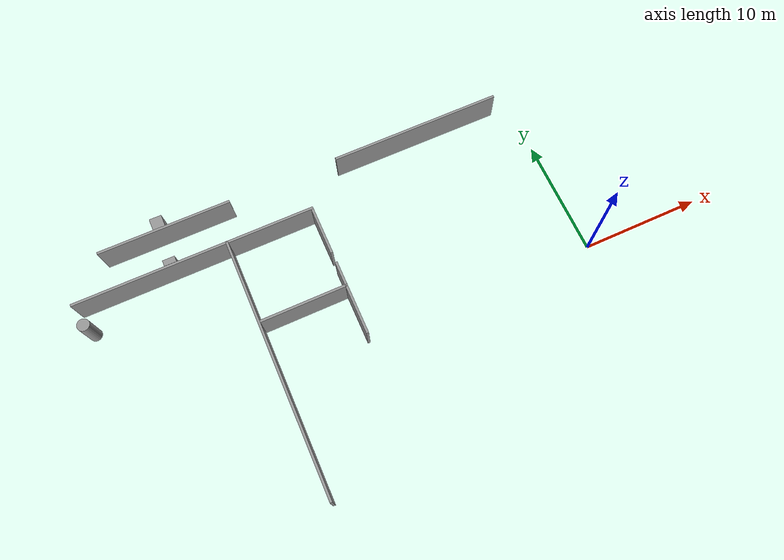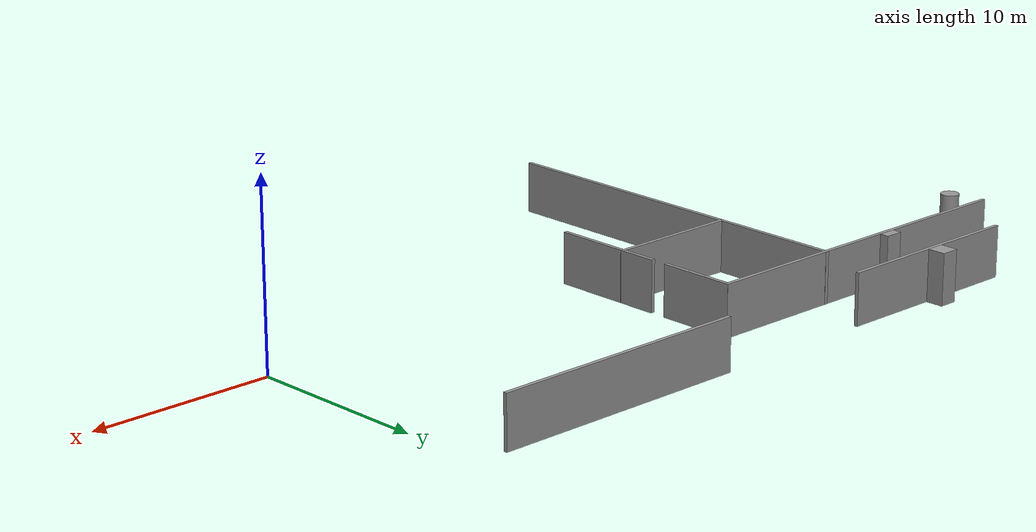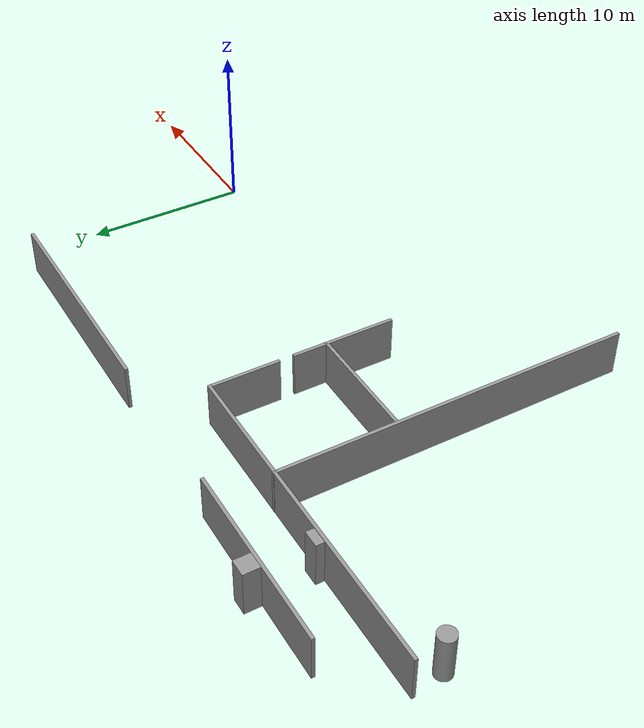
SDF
<sdf version="1.6">
 <world name="default">
  <model name="g1_clone_1_0_clone_0_0_0_clone_clone_0_clone_0">
   <link name="link">
    <pose>6.64359 0.252719 1.4 0 -0 0</pose>
    <inertial>
     <mass>1</mass>
     <inertia><ixx>1</ixx><ixy>0</ixy><ixz>0</ixz><iyy>1</iyy><iyz>0</iyz><izz>1</izz></inertia>
    </inertial>
    <visual name="visual">
     <cast_shadows>0</cast_shadows>
     <geometry><box><size>20 0.2 2.8</size></box></geometry>
     <material>
      <script>
       <uri>model://grey_wall/materials/scripts</uri>
       <uri>model://grey_wall/materials/textures</uri>
       <name>vrc/grey_wall</name>
      </script>
      <ambient>1 1 1 1</ambient>
      <diffuse>1 1 1 1</diffuse>
      <specular>0 0 0 1</specular>
      <emissive>0 0 0 1</emissive>
      <shader type="vertex"><normal_map>__default__</normal_map></shader>
     </material>
    </visual>
    <collision name="collision">
     <geometry><box><size>20 0.2 2.8</size></box></geometry>
     <surface>
      <friction>
       <ode><mu>1</mu><mu2>1</mu2><fdir1>0 0 0</fdir1><slip1>0</slip1><slip2>0</slip2></ode>
       <torsional>
        <coefficient>1</coefficient>
        <patch_radius>0</patch_radius>
        <surface_radius>0</surface_radius>
        <use_patch_radius>1</use_patch_radius>
        <ode><slip>0</slip></ode>
       </torsional>
      </friction>
      <bounce><restitution_coefficient>0</restitution_coefficient><threshold>1e+06</threshold></bounce>
      <contact>
       <collide_without_contact>0</collide_without_contact>
       <collide_without_contact_bitmask>1</collide_without_contact_bitmask>
       <collide_bitmask>1</collide_bitmask>
       <ode>
        <soft_cfm>0</soft_cfm>
        <soft_erp>0.2</soft_erp>
        <kp>1e+13</kp>
        <kd>1</kd>
        <max_vel>0.01</max_vel>
        <min_depth>0</min_depth>
       </ode>
       <bullet>
        <split_impulse>1</split_impulse>
        <split_impulse_penetration_threshold>-0.01</split_impulse_penetration_threshold>
        <soft_cfm>0</soft_cfm>
        <soft_erp>0.2</soft_erp>
        <kp>1e+13</kp>
        <kd>1</kd>
       </bullet>
      </contact>
     </surface>
    </collision>
   </link>
   <static>1</static>
   <pose>-36.0333 10.9946 0 0 -0 0.000774</pose>
  </model>
  <model name="g1_clone_1_0_clone_0_0_0_clone_clone_0_clone_clone_0_0">
   <link name="link">
    <pose>9.44353 0.252325 1.4 0 -0 0</pose>
    <inertial>
     <mass>1</mass>
     <inertia><ixx>1</ixx><ixy>0</ixy><ixz>0</ixz><iyy>1</iyy><iyz>0</iyz><izz>1</izz></inertia>
    </inertial>
    <visual name="visual">
     <cast_shadows>0</cast_shadows>
     <geometry><box><size>14.4 0.2 2.8</size></box></geometry>
     <material>
      <script>
       <uri>model://grey_wall/materials/scripts</uri>
       <uri>model://grey_wall/materials/textures</uri>
       <name>vrc/grey_wall</name>
      </script>
      <ambient>1 1 1 1</ambient>
      <diffuse>1 1 1 1</diffuse>
      <specular>0 0 0 1</specular>
      <emissive>0 0 0 1</emissive>
      <shader type="vertex"><normal_map>__default__</normal_map></shader>
     </material>
    </visual>
    <collision name="collision">
     <geometry><box><size>14.4 0.2 2.8</size></box></geometry>
     <surface>
      <friction>
       <ode><mu>1</mu><mu2>1</mu2><fdir1>0 0 0</fdir1><slip1>0</slip1><slip2>0</slip2></ode>
       <torsional>
        <coefficient>1</coefficient>
        <patch_radius>0</patch_radius>
        <surface_radius>0</surface_radius>
        <use_patch_radius>1</use_patch_radius>
        <ode><slip>0</slip></ode>
       </torsional>
      </friction>
      <bounce><restitution_coefficient>0</restitution_coefficient><threshold>1e+06</threshold></bounce>
      <contact>
       <collide_without_contact>0</collide_without_contact>
       <collide_without_contact_bitmask>1</collide_without_contact_bitmask>
       <collide_bitmask>1</collide_bitmask>
       <ode>
        <soft_cfm>0</soft_cfm>
        <soft_erp>0.2</soft_erp>
        <kp>1e+13</kp>
        <kd>1</kd>
        <max_vel>0.01</max_vel>
        <min_depth>0</min_depth>
       </ode>
       <bullet>
        <split_impulse>1</split_impulse>
        <split_impulse_penetration_threshold>-0.01</split_impulse_penetration_threshold>
        <soft_cfm>0</soft_cfm>
        <soft_erp>0.2</soft_erp>
        <kp>1e+13</kp>
        <kd>1</kd>
       </bullet>
      </contact>
     </surface>
    </collision>
   </link>
   <static>1</static>
   <pose>-18.3147 14.3119 0 0 -0 0.000774</pose>
  </model>
  <model name="grey_wall_0_0_clone_0_clone">
   <link name="link">
    <pose>0 0 1.4 0 -0 0</pose>
    <inertial>
     <mass>1</mass>
     <inertia><ixx>1</ixx><ixy>0</ixy><ixz>0</ixz><iyy>1</iyy><iyz>0</iyz><izz>1</izz></inertia>
    </inertial>
    <visual name="visual">
     <cast_shadows>0</cast_shadows>
     <geometry><box><size>7.4 0.2 2.8</size></box></geometry>
     <material>
      <script>
       <uri>model://grey_wall/materials/scripts</uri>
       <uri>model://grey_wall/materials/textures</uri>
       <name>vrc/grey_wall</name>
      </script>
      <ambient>1 1 1 1</ambient>
      <diffuse>1 1 1 1</diffuse>
      <specular>0 0 0 1</specular>
      <emissive>0 0 0 1</emissive>
      <shader type="vertex"><normal_map>__default__</normal_map></shader>
     </material>
    </visual>
    <collision name="collision">
     <geometry><box><size>7.4 0.2 2.8</size></box></geometry>
     <surface>
      <friction>
       <ode><mu>1</mu><mu2>1</mu2><fdir1>0 0 0</fdir1><slip1>0</slip1><slip2>0</slip2></ode>
       <torsional>
        <coefficient>1</coefficient>
        <patch_radius>0</patch_radius>
        <surface_radius>0</surface_radius>
        <use_patch_radius>1</use_patch_radius>
        <ode><slip>0</slip></ode>
       </torsional>
      </friction>
      <bounce><restitution_coefficient>0</restitution_coefficient><threshold>1e+06</threshold></bounce>
      <contact>
       <collide_without_contact>0</collide_without_contact>
       <collide_without_contact_bitmask>1</collide_without_contact_bitmask>
       <collide_bitmask>1</collide_bitmask>
       <ode>
        <soft_cfm>0</soft_cfm>
        <soft_erp>0.2</soft_erp>
        <kp>1e+13</kp>
        <kd>1</kd>
        <max_vel>0.01</max_vel>
        <min_depth>0</min_depth>
       </ode>
       <bullet>
        <split_impulse>1</split_impulse>
        <split_impulse_penetration_threshold>-0.01</split_impulse_penetration_threshold>
        <soft_cfm>0</soft_cfm>
        <soft_erp>0.2</soft_erp>
        <kp>1e+13</kp>
        <kd>1</kd>
       </bullet>
      </contact>
     </surface>
    </collision>
   </link>
   <static>1</static>
   <pose>-23.1246 4.09947 0 0 -0 0</pose>
  </model>
  <model name="g2_clone_0_0_clone_clone_clone_0">
   <link name="link">
    <pose>0 0 1.4 0 -0 0</pose>
    <inertial>
     <mass>1</mass>
     <inertia><ixx>1</ixx><ixy>0</ixy><ixz>0</ixz><iyy>1</iyy><iyz>0</iyz><izz>1</izz></inertia>
    </inertial>
    <visual name="visual">
     <cast_shadows>0</cast_shadows>
     <geometry><box><size>21.8 0.2 2.8</size></box></geometry>
     <material>
      <script>
       <uri>model://grey_wall/materials/scripts</uri>
       <uri>model://grey_wall/materials/textures</uri>
       <name>vrc/grey_wall</name>
      </script>
      <ambient>1 1 1 1</ambient>
      <diffuse>1 1 1 1</diffuse>
      <specular>0 0 0 1</specular>
      <emissive>0 0 0 1</emissive>
      <shader type="vertex"><normal_map>__default__</normal_map></shader>
     </material>
    </visual>
    <collision name="collision">
     <geometry><box><size>21.8 0.2 2.8</size></box></geometry>
     <surface>
      <friction>
       <ode><mu>1</mu><mu2>1</mu2><fdir1>0 0 0</fdir1><slip1>0</slip1><slip2>0</slip2></ode>
       <torsional>
        <coefficient>1</coefficient>
        <patch_radius>0</patch_radius>
        <surface_radius>0</surface_radius>
        <use_patch_radius>1</use_patch_radius>
        <ode><slip>0</slip></ode>
       </torsional>
      </friction>
      <bounce><restitution_coefficient>0</restitution_coefficient><threshold>1e+06</threshold></bounce>
      <contact>
       <collide_without_contact>0</collide_without_contact>
       <collide_without_contact_bitmask>1</collide_without_contact_bitmask>
       <collide_bitmask>1</collide_bitmask>
       <ode>
        <soft_cfm>0</soft_cfm>
        <soft_erp>0.2</soft_erp>
        <kp>1e+13</kp>
        <kd>1</kd>
        <max_vel>0.01</max_vel>
        <min_depth>0</min_depth>
       </ode>
       <bullet>
        <split_impulse>1</split_impulse>
        <split_impulse_penetration_threshold>-0.01</split_impulse_penetration_threshold>
        <soft_cfm>0</soft_cfm>
        <soft_erp>0.2</soft_erp>
        <kp>1e+13</kp>
        <kd>1</kd>
       </bullet>
      </contact>
     </surface>
    </collision>
   </link>
   <static>1</static>
   <pose>-26.7519 0.468182 0 0 0 -1.57584</pose>
  </model>
  <model name="g3_clone_clone_0_0_0_0_0_clone_0_clone_0_clone_2_clone_0_clone_0_clone_1">
   <link name="link">
    <pose>0.7232 0.251992 1.4 0 -0 0</pose>
    <inertial>
     <mass>1</mass>
     <inertia><ixx>1</ixx><ixy>0</ixy><ixz>0</ixz><iyy>1</iyy><iyz>0</iyz><izz>1</izz></inertia>
    </inertial>
    <visual name="visual">
     <cast_shadows>0</cast_shadows>
     <geometry><box><size>4.3 0.2 2.8</size></box></geometry>
     <material>
      <script>
       <uri>model://grey_wall/materials/scripts</uri>
       <uri>model://grey_wall/materials/textures</uri>
       <name>vrc/grey_wall</name>
      </script>
      <ambient>1 1 1 1</ambient>
      <diffuse>1 1 1 1</diffuse>
      <specular>0 0 0 1</specular>
      <emissive>0 0 0 1</emissive>
      <shader type="vertex"><normal_map>__default__</normal_map></shader>
     </material>
    </visual>
    <collision name="collision">
     <geometry><box><size>4.3 0.2 2.8</size></box></geometry>
     <surface>
      <friction>
       <ode><mu>1</mu><mu2>1</mu2><fdir1>0 0 0</fdir1><slip1>0</slip1><slip2>0</slip2></ode>
       <torsional>
        <coefficient>1</coefficient>
        <patch_radius>0</patch_radius>
        <surface_radius>0</surface_radius>
        <use_patch_radius>1</use_patch_radius>
        <ode><slip>0</slip></ode>
       </torsional>
      </friction>
      <bounce><restitution_coefficient>0</restitution_coefficient><threshold>1e+06</threshold></bounce>
      <contact>
       <collide_without_contact>0</collide_without_contact>
       <collide_without_contact_bitmask>1</collide_without_contact_bitmask>
       <collide_bitmask>1</collide_bitmask>
       <ode>
        <soft_cfm>0</soft_cfm>
        <soft_erp>0.2</soft_erp>
        <kp>1e+13</kp>
        <kd>1</kd>
        <max_vel>0.01</max_vel>
        <min_depth>0</min_depth>
       </ode>
       <bullet>
        <split_impulse>1</split_impulse>
        <split_impulse_penetration_threshold>-0.01</split_impulse_penetration_threshold>
        <soft_cfm>0</soft_cfm>
        <soft_erp>0.2</soft_erp>
        <kp>1e+13</kp>
        <kd>1</kd>
       </bullet>
      </contact>
     </surface>
    </collision>
   </link>
   <static>1</static>
   <pose>-19.7478 9.93284 0 0 0 -1.57728</pose>
  </model>
  <model name="g3_clone_clone_0_clone_0_0_0_0_0_0_clone_clone_clone_0_clone_0_clone_1_0_clone_2">
   <link name="link">
    <pose>0.277892 -0.062462 1.4 0 -0 0</pose>
    <inertial>
     <mass>1</mass>
     <inertia><ixx>1</ixx><ixy>0</ixy><ixz>0</ixz><iyy>1</iyy><iyz>0</iyz><izz>1</izz></inertia>
    </inertial>
    <visual name="visual">
     <cast_shadows>0</cast_shadows>
     <geometry><box><size>2.2 0.2 2.8</size></box></geometry>
     <material>
      <script>
       <uri>model://grey_wall/materials/scripts</uri>
       <uri>model://grey_wall/materials/textures</uri>
       <name>vrc/grey_wall</name>
      </script>
      <ambient>1 1 1 1</ambient>
      <diffuse>1 1 1 1</diffuse>
      <specular>0 0 0 1</specular>
      <emissive>0 0 0 1</emissive>
      <shader type="vertex"><normal_map>__default__</normal_map></shader>
     </material>
    </visual>
    <collision name="collision">
     <geometry><box><size>2.2 0.2 2.8</size></box></geometry>
     <surface>
      <friction>
       <ode><mu>1</mu><mu2>1</mu2><fdir1>0 0 0</fdir1><slip1>0</slip1><slip2>0</slip2></ode>
       <torsional>
        <coefficient>1</coefficient>
        <patch_radius>0</patch_radius>
        <surface_radius>0</surface_radius>
        <use_patch_radius>1</use_patch_radius>
        <ode><slip>0</slip></ode>
       </torsional>
      </friction>
      <bounce><restitution_coefficient>0</restitution_coefficient><threshold>1e+06</threshold></bounce>
      <contact>
       <collide_without_contact>0</collide_without_contact>
       <collide_without_contact_bitmask>1</collide_without_contact_bitmask>
       <collide_bitmask>1</collide_bitmask>
       <ode>
        <soft_cfm>0</soft_cfm>
        <soft_erp>0.2</soft_erp>
        <kp>1e+13</kp>
        <kd>1</kd>
        <max_vel>0.01</max_vel>
        <min_depth>0</min_depth>
       </ode>
       <bullet>
        <split_impulse>1</split_impulse>
        <split_impulse_penetration_threshold>-0.01</split_impulse_penetration_threshold>
        <soft_cfm>0</soft_cfm>
        <soft_erp>0.2</soft_erp>
        <kp>1e+13</kp>
        <kd>1</kd>
       </bullet>
      </contact>
     </surface>
    </collision>
   </link>
   <static>1</static>
   <pose>-19.4549 5.37759 0 0 0 -1.57614</pose>
  </model>
  <model name="g3_clone_clone_0_0_0_0_0_clone_0_clone_0_clone_2_clone_0_clone_0_clone_1_clone">
   <link name="link">
    <pose>0.7232 0.251992 1.4 0 -0 0</pose>
    <inertial>
     <mass>1</mass>
     <inertia><ixx>1</ixx><ixy>0</ixy><ixz>0</ixz><iyy>1</iyy><iyz>0</iyz><izz>1</izz></inertia>
    </inertial>
    <visual name="visual">
     <cast_shadows>0</cast_shadows>
     <geometry><box><size>4.3 0.2 2.8</size></box></geometry>
     <material>
      <script>
       <uri>model://grey_wall/materials/scripts</uri>
       <uri>model://grey_wall/materials/textures</uri>
       <name>vrc/grey_wall</name>
      </script>
      <ambient>1 1 1 1</ambient>
      <diffuse>1 1 1 1</diffuse>
      <specular>0 0 0 1</specular>
      <emissive>0 0 0 1</emissive>
      <shader type="vertex"><normal_map>__default__</normal_map></shader>
     </material>
    </visual>
    <collision name="collision">
     <geometry><box><size>4.3 0.2 2.8</size></box></geometry>
     <surface>
      <friction>
       <ode><mu>1</mu><mu2>1</mu2><fdir1>0 0 0</fdir1><slip1>0</slip1><slip2>0</slip2></ode>
       <torsional>
        <coefficient>1</coefficient>
        <patch_radius>0</patch_radius>
        <surface_radius>0</surface_radius>
        <use_patch_radius>1</use_patch_radius>
        <ode><slip>0</slip></ode>
       </torsional>
      </friction>
      <bounce><restitution_coefficient>0</restitution_coefficient><threshold>1e+06</threshold></bounce>
      <contact>
       <collide_without_contact>0</collide_without_contact>
       <collide_without_contact_bitmask>1</collide_without_contact_bitmask>
       <collide_bitmask>1</collide_bitmask>
       <ode>
        <soft_cfm>0</soft_cfm>
        <soft_erp>0.2</soft_erp>
        <kp>1e+13</kp>
        <kd>1</kd>
        <max_vel>0.01</max_vel>
        <min_depth>0</min_depth>
       </ode>
       <bullet>
        <split_impulse>1</split_impulse>
        <split_impulse_penetration_threshold>-0.01</split_impulse_penetration_threshold>
        <soft_cfm>0</soft_cfm>
        <soft_erp>0.2</soft_erp>
        <kp>1e+13</kp>
        <kd>1</kd>
       </bullet>
      </contact>
     </surface>
    </collision>
   </link>
   <static>1</static>
   <pose>-19.7858 2.77117 0 0 0 -1.57728</pose>
  </model>
  <model name="g1_clone_1_1_clone_clone_0_0_0_clone">
   <link name="link">
    <pose>0.251458 0.000378 1.4 0 -0 0</pose>
    <inertial>
     <mass>1</mass>
     <inertia><ixx>1</ixx><ixy>0</ixy><ixz>0</ixz><iyy>1</iyy><iyz>0</iyz><izz>1</izz></inertia>
    </inertial>
    <visual name="visual">
     <cast_shadows>0</cast_shadows>
     <geometry><box><size>11 0.2 2.8</size></box></geometry>
     <material>
      <script>
       <uri>model://grey_wall/materials/scripts</uri>
       <uri>model://grey_wall/materials/textures</uri>
       <name>vrc/grey_wall</name>
      </script>
      <ambient>1 1 1 1</ambient>
      <diffuse>1 1 1 1</diffuse>
      <specular>0 0 0 1</specular>
      <emissive>0 0 0 1</emissive>
      <shader type="vertex"><normal_map>__default__</normal_map></shader>
     </material>
    </visual>
    <collision name="collision">
     <geometry><box><size>11 0.2 2.8</size></box></geometry>
     <surface>
      <friction>
       <ode><mu>1</mu><mu2>1</mu2><fdir1>0 0 0</fdir1><slip1>0</slip1><slip2>0</slip2></ode>
       <torsional>
        <coefficient>1</coefficient>
        <patch_radius>0</patch_radius>
        <surface_radius>0</surface_radius>
        <use_patch_radius>1</use_patch_radius>
        <ode><slip>0</slip></ode>
       </torsional>
      </friction>
      <bounce><restitution_coefficient>0</restitution_coefficient><threshold>1e+06</threshold></bounce>
      <contact>
       <collide_without_contact>0</collide_without_contact>
       <collide_without_contact_bitmask>1</collide_without_contact_bitmask>
       <collide_bitmask>1</collide_bitmask>
       <ode>
        <soft_cfm>0</soft_cfm>
        <soft_erp>0.2</soft_erp>
        <kp>1e+13</kp>
        <kd>1</kd>
        <max_vel>0.01</max_vel>
        <min_depth>0</min_depth>
       </ode>
       <bullet>
        <split_impulse>1</split_impulse>
        <split_impulse_penetration_threshold>-0.01</split_impulse_penetration_threshold>
        <soft_cfm>0</soft_cfm>
        <soft_erp>0.2</soft_erp>
        <kp>1e+13</kp>
        <kd>1</kd>
       </bullet>
      </contact>
     </surface>
    </collision>
   </link>
   <static>1</static>
   <pose>-31.0282 14.5428 0 0 -0 0</pose>
  </model>
  <model name="unit_cylinder_0_1_0">
   <link name="link">
    <pose>0.876728 0.324661 0.817505 0 -0 0</pose>
    <inertial>
     <mass>1</mass>
     <inertia><ixx>0.145833</ixx><ixy>0</ixy><ixz>0</ixz><iyy>0.145833</iyy><iyz>0</iyz><izz>0.125</izz></inertia>
    </inertial>
    <visual name="visual">
     <geometry><cylinder><radius>0.5</radius><length>2.8</length></cylinder></geometry>
     <material>
      <script><name>Gazebo/Grey</name><uri>file://media/materials/scripts/gazebo.material</uri></script>
      <ambient>0.3 0.3 0.3 1</ambient>
      <diffuse>0.7 0.7 0.7 1</diffuse>
      <specular>0.01 0.01 0.01 1</specular>
      <emissive>0 0 0 1</emissive>
      <shader type="vertex"><normal_map>__default__</normal_map></shader>
     </material>
    </visual>
    <collision name="collision">
     <geometry><cylinder><radius>0.5</radius><length>2.8</length></cylinder></geometry>
     <surface>
      <friction>
       <ode><mu>1</mu><mu2>1</mu2><fdir1>0 0 0</fdir1><slip1>0</slip1><slip2>0</slip2></ode>
       <torsional>
        <coefficient>1</coefficient>
        <patch_radius>0</patch_radius>
        <surface_radius>0</surface_radius>
        <use_patch_radius>1</use_patch_radius>
        <ode><slip>0</slip></ode>
       </torsional>
      </friction>
      <bounce><restitution_coefficient>0</restitution_coefficient><threshold>1e+06</threshold></bounce>
      <contact>
       <collide_without_contact>0</collide_without_contact>
       <collide_without_contact_bitmask>1</collide_without_contact_bitmask>
       <collide_bitmask>1</collide_bitmask>
       <ode>
        <soft_cfm>0</soft_cfm>
        <soft_erp>0.2</soft_erp>
        <kp>1e+13</kp>
        <kd>1</kd>
        <max_vel>0.01</max_vel>
        <min_depth>0</min_depth>
       </ode>
       <bullet>
        <split_impulse>1</split_impulse>
        <split_impulse_penetration_threshold>-0.01</split_impulse_penetration_threshold>
        <soft_cfm>0</soft_cfm>
        <soft_erp>0.2</soft_erp>
        <kp>1e+13</kp>
        <kd>1</kd>
       </bullet>
      </contact>
     </surface>
    </collision>
   </link>
   <static>0</static>
   <pose>-39.8091 9.02478 0.582488 0 0 -4.9e-05</pose>
  </model>
  <model name="unit_box_0_0_clone_0_0_clone_3">
   <link name="link">
    <pose>-7.83659 0.075446 3.84331 0 -0 0</pose>
    <inertial>
     <mass>1</mass>
     <inertia>
      <ixx>0.166667</ixx>
      <ixy>0</ixy>
      <ixz>0</ixz>
      <iyy>0.166667</iyy>
      <iyz>0</iyz>
      <izz>0.166667</izz>
     </inertia>
    </inertial>
    <visual name="visual">
     <geometry><box><size>1 0.5 2.8</size></box></geometry>
     <material>
      <script><name>Gazebo/Grey</name><uri>file://media/materials/scripts/gazebo.material</uri></script>
      <ambient>0.3 0.3 0.3 1</ambient>
      <diffuse>0.7 0.7 0.7 1</diffuse>
      <specular>0.01 0.01 0.01 1</specular>
      <emissive>0 0 0 1</emissive>
      <shader type="vertex"><normal_map>__default__</normal_map></shader>
     </material>
    </visual>
    <collision name="collision">
     <geometry><box><size>1 0.5 2.8</size></box></geometry>
     <surface>
      <friction>
       <ode><mu>1</mu><mu2>1</mu2><fdir1>0 0 0</fdir1><slip1>0</slip1><slip2>0</slip2></ode>
       <torsional>
        <coefficient>1</coefficient>
        <patch_radius>0</patch_radius>
        <surface_radius>0</surface_radius>
        <use_patch_radius>1</use_patch_radius>
        <ode><slip>0</slip></ode>
       </torsional>
      </friction>
      <bounce><restitution_coefficient>0</restitution_coefficient><threshold>1e+06</threshold></bounce>
      <contact>
       <collide_without_contact>0</collide_without_contact>
       <collide_without_contact_bitmask>1</collide_without_contact_bitmask>
       <collide_bitmask>1</collide_bitmask>
       <ode>
        <soft_cfm>0</soft_cfm>
        <soft_erp>0.2</soft_erp>
        <kp>1e+13</kp>
        <kd>1</kd>
        <max_vel>0.01</max_vel>
        <min_depth>0</min_depth>
       </ode>
       <bullet>
        <split_impulse>1</split_impulse>
        <split_impulse_penetration_threshold>-0.01</split_impulse_penetration_threshold>
        <soft_cfm>0</soft_cfm>
        <soft_erp>0.2</soft_erp>
        <kp>1e+13</kp>
        <kd>1</kd>
       </bullet>
      </contact>
     </surface>
    </collision>
   </link>
   <static>0</static>
   <pose>-23.4761 11.5349 -2.44331 -1e-06 0 4.1e-05</pose>
  </model>
  <model name="unit_box_0_0_clone_clone_0_clone">
   <link name="link">
    <pose>-5.77239 -0.379822 3.84331 0 -0 0</pose>
    <inertial>
     <mass>1</mass>
     <inertia>
      <ixx>0.166667</ixx>
      <ixy>0</ixy>
      <ixz>0</ixz>
      <iyy>0.166667</iyy>
      <iyz>0</iyz>
      <izz>0.166667</izz>
     </inertia>
    </inertial>
    <visual name="visual">
     <geometry><box><size>1 1 2.8</size></box></geometry>
     <material>
      <script><name>Gazebo/Grey</name><uri>file://media/materials/scripts/gazebo.material</uri></script>
      <ambient>0.3 0.3 0.3 1</ambient>
      <diffuse>0.7 0.7 0.7 1</diffuse>
      <specular>0.01 0.01 0.01 1</specular>
      <emissive>0 0 0 1</emissive>
      <shader type="vertex"><normal_map>__default__</normal_map></shader>
     </material>
    </visual>
    <collision name="collision">
     <geometry><box><size>1 1 2.8</size></box></geometry>
     <surface>
      <friction>
       <ode><mu>1</mu><mu2>1</mu2><fdir1>0 0 0</fdir1><slip1>0</slip1><slip2>0</slip2></ode>
       <torsional>
        <coefficient>1</coefficient>
        <patch_radius>0</patch_radius>
        <surface_radius>0</surface_radius>
        <use_patch_radius>1</use_patch_radius>
        <ode><slip>0</slip></ode>
       </torsional>
      </friction>
      <bounce><restitution_coefficient>0</restitution_coefficient><threshold>1e+06</threshold></bounce>
      <contact>
       <collide_without_contact>0</collide_without_contact>
       <collide_without_contact_bitmask>1</collide_without_contact_bitmask>
       <collide_bitmask>1</collide_bitmask>
       <ode>
        <soft_cfm>0</soft_cfm>
        <soft_erp>0.2</soft_erp>
        <kp>1e+13</kp>
        <kd>1</kd>
        <max_vel>0.01</max_vel>
        <min_depth>0</min_depth>
       </ode>
       <bullet>
        <split_impulse>1</split_impulse>
        <split_impulse_penetration_threshold>-0.01</split_impulse_penetration_threshold>
        <soft_cfm>0</soft_cfm>
        <soft_erp>0.2</soft_erp>
        <kp>1e+13</kp>
        <kd>1</kd>
       </bullet>
      </contact>
     </surface>
    </collision>
   </link>
   <static>0</static>
   <pose>-25.3828 15.5085 -2.44331 0 -0 5.5e-05</pose>
  </model>
 </world>
</sdf>
